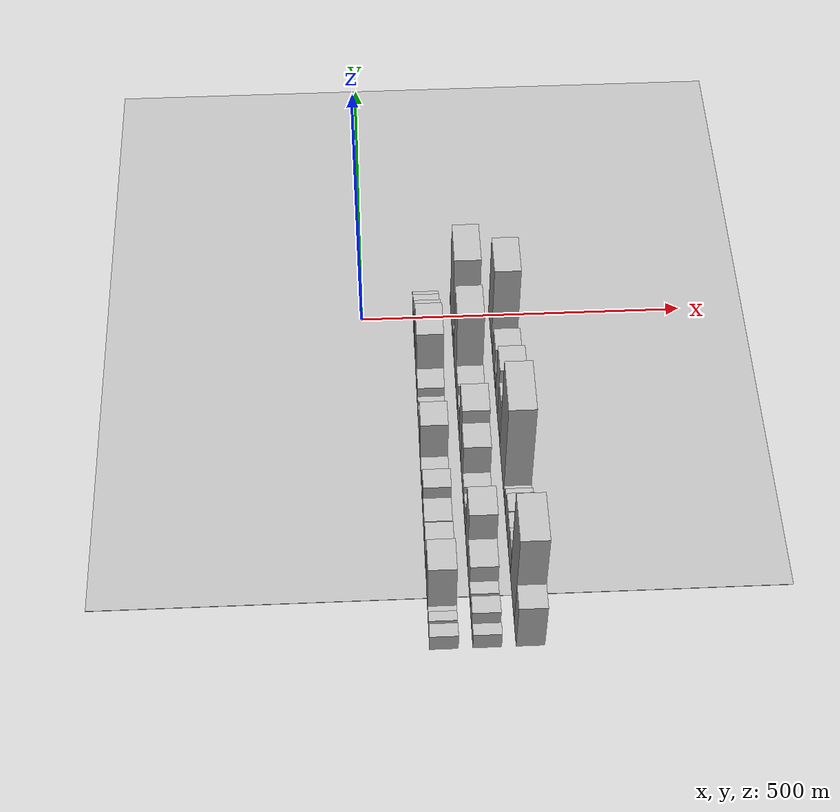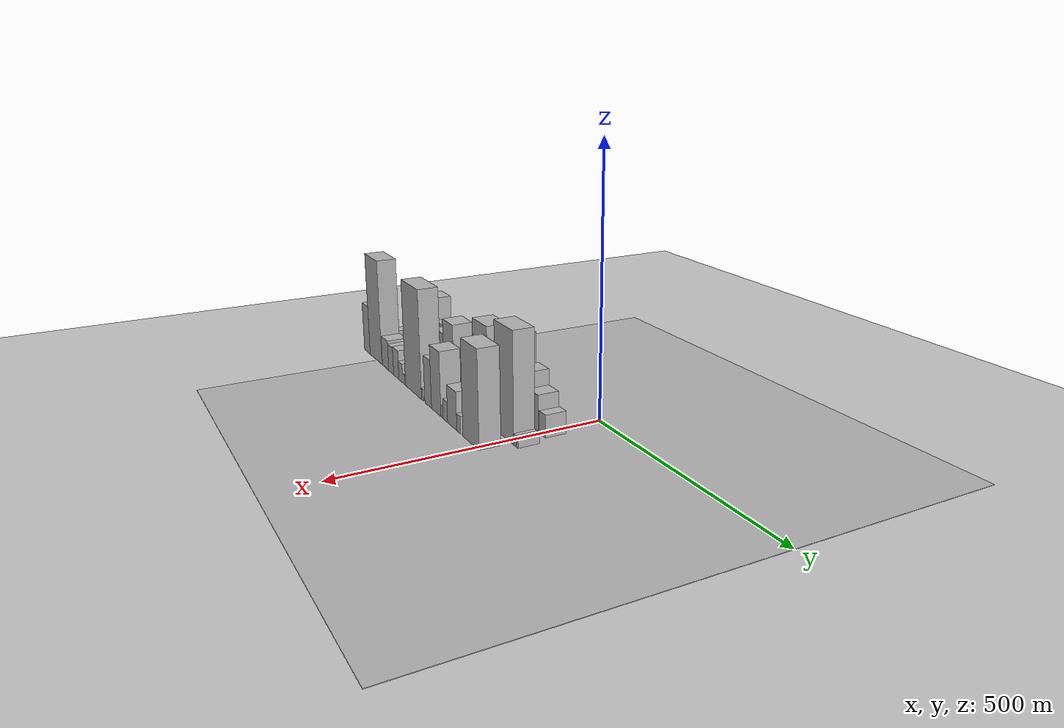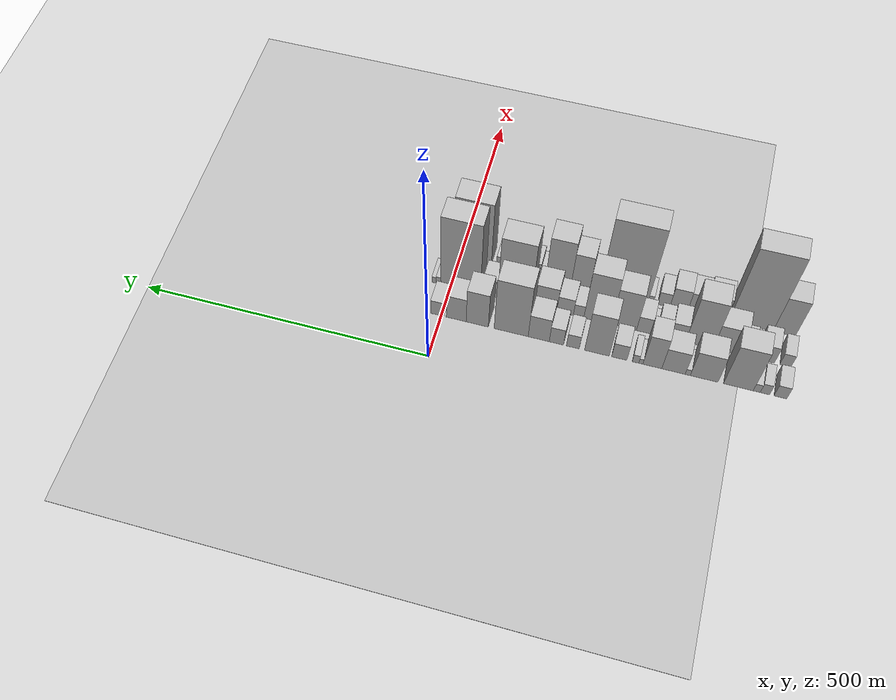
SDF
<sdf version="1.6">
 <world name="default">
  <include><name>ground_plane_1</name><uri>model://HANNAS_ground_plane</uri></include>
  <include>
   <name>ground_plane_2</name>
   <uri>model://HANNAS_ground_plane</uri>
   <pose>100 0 0  0 0 0</pose>
  </include>
  <model name="building_1">
   <static>1</static>
   <pose>100.0000 -569.7294 0 0.000000 0.000000 0.000000</pose>
   <link name="link">
    <pose>0 0 18.00 0 0 0</pose>
    <collision name="collision"><geometry><box><size>40.0000 20.5411 36.0000</size></box></geometry></collision>
    <visual name="visual">
     <cast_shadows>0</cast_shadows>
     <geometry><box><size>40.0000 20.5411 36.0000</size></box></geometry>
     <material>
      <script>
       <uri>model://HANNAS_wall/materials/scripts</uri>
       <uri>model://HANNAS_wall/materials/textures</uri>
       <name>vrc/HANNAS_wall</name>
      </script>
     </material>
    </visual>
   </link>
  </model>
  <model name="building_2">
   <static>1</static>
   <pose>100.0000 -544.8365 0 0.000000 0.000000 0.000000</pose>
   <link name="link">
    <pose>0 0 15.00 0 0 0</pose>
    <collision name="collision"><geometry><box><size>40.0000 15.2448 30.0000</size></box></geometry></collision>
    <visual name="visual">
     <cast_shadows>0</cast_shadows>
     <geometry><box><size>40.0000 15.2448 30.0000</size></box></geometry>
     <material>
      <script>
       <uri>model://HANNAS_wall/materials/scripts</uri>
       <uri>model://HANNAS_wall/materials/textures</uri>
       <name>vrc/HANNAS_wall</name>
      </script>
     </material>
    </visual>
   </link>
  </model>
  <model name="building_3">
   <static>1</static>
   <pose>100.0000 -531.4827 0 0.000000 0.000000 0.000000</pose>
   <link name="link">
    <pose>0 0 12.00 0 0 0</pose>
    <collision name="collision"><geometry><box><size>40.0000 11.4627 24.0000</size></box></geometry></collision>
    <visual name="visual">
     <cast_shadows>0</cast_shadows>
     <geometry><box><size>40.0000 11.4627 24.0000</size></box></geometry>
     <material>
      <script>
       <uri>model://HANNAS_wall/materials/scripts</uri>
       <uri>model://HANNAS_wall/materials/textures</uri>
       <name>vrc/HANNAS_wall</name>
      </script>
     </material>
    </visual>
   </link>
  </model>
  <model name="building_4">
   <static>1</static>
   <pose>100.0000 -501.5214 0 0.000000 0.000000 0.000000</pose>
   <link name="link">
    <pose>0 0 61.50 0 0 0</pose>
    <collision name="collision"><geometry><box><size>40.0000 48.4600 123.0000</size></box></geometry></collision>
    <visual name="visual">
     <cast_shadows>0</cast_shadows>
     <geometry><box><size>40.0000 48.4600 123.0000</size></box></geometry>
     <material>
      <script>
       <uri>model://HANNAS_wall/materials/scripts</uri>
       <uri>model://HANNAS_wall/materials/textures</uri>
       <name>vrc/HANNAS_wall</name>
      </script>
     </material>
    </visual>
   </link>
  </model>
  <model name="building_5">
   <static>1</static>
   <pose>100.0000 -445.5409 0 0.000000 0.000000 0.000000</pose>
   <link name="link">
    <pose>0 0 39.00 0 0 0</pose>
    <collision name="collision"><geometry><box><size>40.0000 45.5010 78.0000</size></box></geometry></collision>
    <visual name="visual">
     <cast_shadows>0</cast_shadows>
     <geometry><box><size>40.0000 45.5010 78.0000</size></box></geometry>
     <material>
      <script>
       <uri>model://HANNAS_wall/materials/scripts</uri>
       <uri>model://HANNAS_wall/materials/textures</uri>
       <name>vrc/HANNAS_wall</name>
      </script>
     </material>
    </visual>
   </link>
  </model>
  <model name="building_6">
   <static>1</static>
   <pose>100.0000 -418.5761 0 0.000000 0.000000 0.000000</pose>
   <link name="link">
    <pose>0 0 9.00 0 0 0</pose>
    <collision name="collision"><geometry><box><size>40.0000 8.4285 18.0000</size></box></geometry></collision>
    <visual name="visual">
     <cast_shadows>0</cast_shadows>
     <geometry><box><size>40.0000 8.4285 18.0000</size></box></geometry>
     <material>
      <script>
       <uri>model://HANNAS_wall/materials/scripts</uri>
       <uri>model://HANNAS_wall/materials/textures</uri>
       <name>vrc/HANNAS_wall</name>
      </script>
     </material>
    </visual>
   </link>
  </model>
  <model name="building_7">
   <static>1</static>
   <pose>100.0000 -394.9789 0 0.000000 0.000000 0.000000</pose>
   <link name="link">
    <pose>0 0 33.00 0 0 0</pose>
    <collision name="collision"><geometry><box><size>40.0000 38.7658 66.0000</size></box></geometry></collision>
    <visual name="visual">
     <cast_shadows>0</cast_shadows>
     <geometry><box><size>40.0000 38.7658 66.0000</size></box></geometry>
     <material>
      <script>
       <uri>model://HANNAS_wall/materials/scripts</uri>
       <uri>model://HANNAS_wall/materials/textures</uri>
       <name>vrc/HANNAS_wall</name>
      </script>
     </material>
    </visual>
   </link>
  </model>
  <model name="building_8">
   <static>1</static>
   <pose>100.0000 -359.9123 0 0.000000 0.000000 0.000000</pose>
   <link name="link">
    <pose>0 0 46.50 0 0 0</pose>
    <collision name="collision"><geometry><box><size>40.0000 31.3676 93.0000</size></box></geometry></collision>
    <visual name="visual">
     <cast_shadows>0</cast_shadows>
     <geometry><box><size>40.0000 31.3676 93.0000</size></box></geometry>
     <material>
      <script>
       <uri>model://HANNAS_wall/materials/scripts</uri>
       <uri>model://HANNAS_wall/materials/textures</uri>
       <name>vrc/HANNAS_wall</name>
      </script>
     </material>
    </visual>
   </link>
  </model>
  <model name="building_9">
   <static>1</static>
   <pose>100.0000 -340.8013 0 0.000000 0.000000 0.000000</pose>
   <link name="link">
    <pose>0 0 7.50 0 0 0</pose>
    <collision name="collision"><geometry><box><size>40.0000 6.8542 15.0000</size></box></geometry></collision>
    <visual name="visual">
     <cast_shadows>0</cast_shadows>
     <geometry><box><size>40.0000 6.8542 15.0000</size></box></geometry>
     <material>
      <script>
       <uri>model://HANNAS_wall/materials/scripts</uri>
       <uri>model://HANNAS_wall/materials/textures</uri>
       <name>vrc/HANNAS_wall</name>
      </script>
     </material>
    </visual>
   </link>
  </model>
  <model name="building_10">
   <static>1</static>
   <pose>100.0000 -331.9226 0 0.000000 0.000000 0.000000</pose>
   <link name="link">
    <pose>0 0 12.00 0 0 0</pose>
    <collision name="collision"><geometry><box><size>40.0000 10.9032 24.0000</size></box></geometry></collision>
    <visual name="visual">
     <cast_shadows>0</cast_shadows>
     <geometry><box><size>40.0000 10.9032 24.0000</size></box></geometry>
     <material>
      <script>
       <uri>model://HANNAS_wall/materials/scripts</uri>
       <uri>model://HANNAS_wall/materials/textures</uri>
       <name>vrc/HANNAS_wall</name>
      </script>
     </material>
    </visual>
   </link>
  </model>
  <model name="building_11">
   <static>1</static>
   <pose>100.0000 -304.6821 0 0.000000 0.000000 0.000000</pose>
   <link name="link">
    <pose>0 0 22.50 0 0 0</pose>
    <collision name="collision"><geometry><box><size>40.0000 25.5778 45.0000</size></box></geometry></collision>
    <visual name="visual">
     <cast_shadows>0</cast_shadows>
     <geometry><box><size>40.0000 25.5778 45.0000</size></box></geometry>
     <material>
      <script>
       <uri>model://HANNAS_wall/materials/scripts</uri>
       <uri>model://HANNAS_wall/materials/textures</uri>
       <name>vrc/HANNAS_wall</name>
      </script>
     </material>
    </visual>
   </link>
  </model>
  <model name="building_12">
   <static>1</static>
   <pose>100.0000 -267.0207 0 0.000000 0.000000 0.000000</pose>
   <link name="link">
    <pose>0 0 60.00 0 0 0</pose>
    <collision name="collision"><geometry><box><size>40.0000 41.7449 120.0000</size></box></geometry></collision>
    <visual name="visual">
     <cast_shadows>0</cast_shadows>
     <geometry><box><size>40.0000 41.7449 120.0000</size></box></geometry>
     <material>
      <script>
       <uri>model://HANNAS_wall/materials/scripts</uri>
       <uri>model://HANNAS_wall/materials/textures</uri>
       <name>vrc/HANNAS_wall</name>
      </script>
     </material>
    </visual>
   </link>
  </model>
  <model name="building_13">
   <static>1</static>
   <pose>100.0000 -226.2781 0 0.000000 0.000000 0.000000</pose>
   <link name="link">
    <pose>0 0 19.50 0 0 0</pose>
    <collision name="collision"><geometry><box><size>40.0000 21.7403 39.0000</size></box></geometry></collision>
    <visual name="visual">
     <cast_shadows>0</cast_shadows>
     <geometry><box><size>40.0000 21.7403 39.0000</size></box></geometry>
     <material>
      <script>
       <uri>model://HANNAS_wall/materials/scripts</uri>
       <uri>model://HANNAS_wall/materials/textures</uri>
       <name>vrc/HANNAS_wall</name>
      </script>
     </material>
    </visual>
   </link>
  </model>
  <model name="building_14">
   <static>1</static>
   <pose>100.0000 -198.2800 0 0.000000 0.000000 0.000000</pose>
   <link name="link">
    <pose>0 0 24.00 0 0 0</pose>
    <collision name="collision"><geometry><box><size>40.0000 24.2561 48.0000</size></box></geometry></collision>
    <visual name="visual">
     <cast_shadows>0</cast_shadows>
     <geometry><box><size>40.0000 24.2561 48.0000</size></box></geometry>
     <material>
      <script>
       <uri>model://HANNAS_wall/materials/scripts</uri>
       <uri>model://HANNAS_wall/materials/textures</uri>
       <name>vrc/HANNAS_wall</name>
      </script>
     </material>
    </visual>
   </link>
  </model>
  <model name="building_15">
   <static>1</static>
   <pose>100.0000 -168.1110 0 0.000000 0.000000 0.000000</pose>
   <link name="link">
    <pose>0 0 34.50 0 0 0</pose>
    <collision name="collision"><geometry><box><size>40.0000 36.0818 69.0000</size></box></geometry></collision>
    <visual name="visual">
     <cast_shadows>0</cast_shadows>
     <geometry><box><size>40.0000 36.0818 69.0000</size></box></geometry>
     <material>
      <script>
       <uri>model://HANNAS_wall/materials/scripts</uri>
       <uri>model://HANNAS_wall/materials/textures</uri>
       <name>vrc/HANNAS_wall</name>
      </script>
     </material>
    </visual>
   </link>
  </model>
  <model name="building_16">
   <static>1</static>
   <pose>100.0000 -120.7735 0 0.000000 0.000000 0.000000</pose>
   <link name="link">
    <pose>0 0 76.50 0 0 0</pose>
    <collision name="collision"><geometry><box><size>40.0000 58.5933 153.0000</size></box></geometry></collision>
    <visual name="visual">
     <cast_shadows>0</cast_shadows>
     <geometry><box><size>40.0000 58.5933 153.0000</size></box></geometry>
     <material>
      <script>
       <uri>model://HANNAS_wall/materials/scripts</uri>
       <uri>model://HANNAS_wall/materials/textures</uri>
       <name>vrc/HANNAS_wall</name>
      </script>
     </material>
    </visual>
   </link>
  </model>
  <model name="building_17">
   <static>1</static>
   <pose>100.0000 -62.2903 0 0.000000 0.000000 0.000000</pose>
   <link name="link">
    <pose>0 0 49.50 0 0 0</pose>
    <collision name="collision"><geometry><box><size>40.0000 38.3731 99.0000</size></box></geometry></collision>
    <visual name="visual">
     <cast_shadows>0</cast_shadows>
     <geometry><box><size>40.0000 38.3731 99.0000</size></box></geometry>
     <material>
      <script>
       <uri>model://HANNAS_wall/materials/scripts</uri>
       <uri>model://HANNAS_wall/materials/textures</uri>
       <name>vrc/HANNAS_wall</name>
      </script>
     </material>
    </visual>
   </link>
  </model>
  <model name="building_18">
   <static>1</static>
   <pose>100.0000 -25.6986 0 0.000000 0.000000 0.000000</pose>
   <link name="link">
    <pose>0 0 34.50 0 0 0</pose>
    <collision name="collision"><geometry><box><size>40.0000 34.8102 69.0000</size></box></geometry></collision>
    <visual name="visual">
     <cast_shadows>0</cast_shadows>
     <geometry><box><size>40.0000 34.8102 69.0000</size></box></geometry>
     <material>
      <script>
       <uri>model://HANNAS_wall/materials/scripts</uri>
       <uri>model://HANNAS_wall/materials/textures</uri>
       <name>vrc/HANNAS_wall</name>
      </script>
     </material>
    </visual>
   </link>
  </model>
  <model name="building_19">
   <static>1</static>
   <pose>100.0000 7.2815 0 0.000000 0.000000 0.000000</pose>
   <link name="link">
    <pose>0 0 21.00 0 0 0</pose>
    <collision name="collision"><geometry><box><size>40.0000 23.1501 42.0000</size></box></geometry></collision>
    <visual name="visual">
     <cast_shadows>0</cast_shadows>
     <geometry><box><size>40.0000 23.1501 42.0000</size></box></geometry>
     <material>
      <script>
       <uri>model://HANNAS_wall/materials/scripts</uri>
       <uri>model://HANNAS_wall/materials/textures</uri>
       <name>vrc/HANNAS_wall</name>
      </script>
     </material>
    </visual>
   </link>
  </model>
  <model name="building_38">
   <static>1</static>
   <pose>160.0000 -570.8208 0 0.000000 0.000000 0.000000</pose>
   <link name="link">
    <pose>0 0 18.00 0 0 0</pose>
    <collision name="collision"><geometry><box><size>40.0000 18.3584 36.0000</size></box></geometry></collision>
    <visual name="visual">
     <cast_shadows>0</cast_shadows>
     <geometry><box><size>40.0000 18.3584 36.0000</size></box></geometry>
     <material>
      <script>
       <uri>model://HANNAS_wall/materials/scripts</uri>
       <uri>model://HANNAS_wall/materials/textures</uri>
       <name>vrc/HANNAS_wall</name>
      </script>
     </material>
    </visual>
   </link>
  </model>
  <model name="building_39">
   <static>1</static>
   <pose>160.0000 -539.3409 0 0.000000 0.000000 0.000000</pose>
   <link name="link">
    <pose>0 0 24.00 0 0 0</pose>
    <collision name="collision"><geometry><box><size>40.0000 26.6013 48.0000</size></box></geometry></collision>
    <visual name="visual">
     <cast_shadows>0</cast_shadows>
     <geometry><box><size>40.0000 26.6013 48.0000</size></box></geometry>
     <material>
      <script>
       <uri>model://HANNAS_wall/materials/scripts</uri>
       <uri>model://HANNAS_wall/materials/textures</uri>
       <name>vrc/HANNAS_wall</name>
      </script>
     </material>
    </visual>
   </link>
  </model>
  <model name="building_40">
   <static>1</static>
   <pose>160.0000 -506.1408 0 0.000000 0.000000 0.000000</pose>
   <link name="link">
    <pose>0 0 18.00 0 0 0</pose>
    <collision name="collision"><geometry><box><size>40.0000 19.7989 36.0000</size></box></geometry></collision>
    <visual name="visual">
     <cast_shadows>0</cast_shadows>
     <geometry><box><size>40.0000 19.7989 36.0000</size></box></geometry>
     <material>
      <script>
       <uri>model://HANNAS_wall/materials/scripts</uri>
       <uri>model://HANNAS_wall/materials/textures</uri>
       <name>vrc/HANNAS_wall</name>
      </script>
     </material>
    </visual>
   </link>
  </model>
  <model name="building_41">
   <static>1</static>
   <pose>160.0000 -473.7672 0 0.000000 0.000000 0.000000</pose>
   <link name="link">
    <pose>0 0 37.50 0 0 0</pose>
    <collision name="collision"><geometry><box><size>40.0000 44.9482 75.0000</size></box></geometry></collision>
    <visual name="visual">
     <cast_shadows>0</cast_shadows>
     <geometry><box><size>40.0000 44.9482 75.0000</size></box></geometry>
     <material>
      <script>
       <uri>model://HANNAS_wall/materials/scripts</uri>
       <uri>model://HANNAS_wall/materials/textures</uri>
       <name>vrc/HANNAS_wall</name>
      </script>
     </material>
    </visual>
   </link>
  </model>
  <model name="building_42">
   <static>1</static>
   <pose>160.0000 -428.0473 0 0.000000 0.000000 0.000000</pose>
   <link name="link">
    <pose>0 0 69.00 0 0 0</pose>
    <collision name="collision"><geometry><box><size>40.0000 46.4916 138.0000</size></box></geometry></collision>
    <visual name="visual">
     <cast_shadows>0</cast_shadows>
     <geometry><box><size>40.0000 46.4916 138.0000</size></box></geometry>
     <material>
      <script>
       <uri>model://HANNAS_wall/materials/scripts</uri>
       <uri>model://HANNAS_wall/materials/textures</uri>
       <name>vrc/HANNAS_wall</name>
      </script>
     </material>
    </visual>
   </link>
  </model>
  <model name="building_43">
   <static>1</static>
   <pose>160.0000 -391.6803 0 0.000000 0.000000 0.000000</pose>
   <link name="link">
    <pose>0 0 25.50 0 0 0</pose>
    <collision name="collision"><geometry><box><size>40.0000 26.2424 51.0000</size></box></geometry></collision>
    <visual name="visual">
     <cast_shadows>0</cast_shadows>
     <geometry><box><size>40.0000 26.2424 51.0000</size></box></geometry>
     <material>
      <script>
       <uri>model://HANNAS_wall/materials/scripts</uri>
       <uri>model://HANNAS_wall/materials/textures</uri>
       <name>vrc/HANNAS_wall</name>
      </script>
     </material>
    </visual>
   </link>
  </model>
  <model name="building_44">
   <static>1</static>
   <pose>160.0000 -366.9874 0 0.000000 0.000000 0.000000</pose>
   <link name="link">
    <pose>0 0 21.00 0 0 0</pose>
    <collision name="collision"><geometry><box><size>40.0000 23.1434 42.0000</size></box></geometry></collision>
    <visual name="visual">
     <cast_shadows>0</cast_shadows>
     <geometry><box><size>40.0000 23.1434 42.0000</size></box></geometry>
     <material>
      <script>
       <uri>model://HANNAS_wall/materials/scripts</uri>
       <uri>model://HANNAS_wall/materials/textures</uri>
       <name>vrc/HANNAS_wall</name>
      </script>
     </material>
    </visual>
   </link>
  </model>
  <model name="building_45">
   <static>1</static>
   <pose>160.0000 -351.0941 0 0.000000 0.000000 0.000000</pose>
   <link name="link">
    <pose>0 0 10.50 0 0 0</pose>
    <collision name="collision"><geometry><box><size>40.0000 8.6432 21.0000</size></box></geometry></collision>
    <visual name="visual">
     <cast_shadows>0</cast_shadows>
     <geometry><box><size>40.0000 8.6432 21.0000</size></box></geometry>
     <material>
      <script>
       <uri>model://HANNAS_wall/materials/scripts</uri>
       <uri>model://HANNAS_wall/materials/textures</uri>
       <name>vrc/HANNAS_wall</name>
      </script>
     </material>
    </visual>
   </link>
  </model>
  <model name="building_46">
   <static>1</static>
   <pose>160.0000 -334.4857 0 0.000000 0.000000 0.000000</pose>
   <link name="link">
    <pose>0 0 22.50 0 0 0</pose>
    <collision name="collision"><geometry><box><size>40.0000 24.5735 45.0000</size></box></geometry></collision>
    <visual name="visual">
     <cast_shadows>0</cast_shadows>
     <geometry><box><size>40.0000 24.5735 45.0000</size></box></geometry>
     <material>
      <script>
       <uri>model://HANNAS_wall/materials/scripts</uri>
       <uri>model://HANNAS_wall/materials/textures</uri>
       <name>vrc/HANNAS_wall</name>
      </script>
     </material>
    </visual>
   </link>
  </model>
  <model name="building_47">
   <static>1</static>
   <pose>160.0000 -301.0077 0 0.000000 0.000000 0.000000</pose>
   <link name="link">
    <pose>0 0 55.50 0 0 0</pose>
    <collision name="collision"><geometry><box><size>40.0000 42.3825 111.0000</size></box></geometry></collision>
    <visual name="visual">
     <cast_shadows>0</cast_shadows>
     <geometry><box><size>40.0000 42.3825 111.0000</size></box></geometry>
     <material>
      <script>
       <uri>model://HANNAS_wall/materials/scripts</uri>
       <uri>model://HANNAS_wall/materials/textures</uri>
       <name>vrc/HANNAS_wall</name>
      </script>
     </material>
    </visual>
   </link>
  </model>
  <model name="building_48">
   <static>1</static>
   <pose>160.0000 -256.0174 0 0.000000 0.000000 0.000000</pose>
   <link name="link">
    <pose>0 0 70.50 0 0 0</pose>
    <collision name="collision"><geometry><box><size>40.0000 47.5980 141.0000</size></box></geometry></collision>
    <visual name="visual">
     <cast_shadows>0</cast_shadows>
     <geometry><box><size>40.0000 47.5980 141.0000</size></box></geometry>
     <material>
      <script>
       <uri>model://HANNAS_wall/materials/scripts</uri>
       <uri>model://HANNAS_wall/materials/textures</uri>
       <name>vrc/HANNAS_wall</name>
      </script>
     </material>
    </visual>
   </link>
  </model>
  <model name="building_49">
   <static>1</static>
   <pose>160.0000 -223.1073 0 0.000000 0.000000 0.000000</pose>
   <link name="link">
    <pose>0 0 18.00 0 0 0</pose>
    <collision name="collision"><geometry><box><size>40.0000 18.2224 36.0000</size></box></geometry></collision>
    <visual name="visual">
     <cast_shadows>0</cast_shadows>
     <geometry><box><size>40.0000 18.2224 36.0000</size></box></geometry>
     <material>
      <script>
       <uri>model://HANNAS_wall/materials/scripts</uri>
       <uri>model://HANNAS_wall/materials/textures</uri>
       <name>vrc/HANNAS_wall</name>
      </script>
     </material>
    </visual>
   </link>
  </model>
  <model name="building_50">
   <static>1</static>
   <pose>160.0000 -199.8318 0 0.000000 0.000000 0.000000</pose>
   <link name="link">
    <pose>0 0 24.00 0 0 0</pose>
    <collision name="collision"><geometry><box><size>40.0000 28.3286 48.0000</size></box></geometry></collision>
    <visual name="visual">
     <cast_shadows>0</cast_shadows>
     <geometry><box><size>40.0000 28.3286 48.0000</size></box></geometry>
     <material>
      <script>
       <uri>model://HANNAS_wall/materials/scripts</uri>
       <uri>model://HANNAS_wall/materials/textures</uri>
       <name>vrc/HANNAS_wall</name>
      </script>
     </material>
    </visual>
   </link>
  </model>
  <model name="building_51">
   <static>1</static>
   <pose>160.0000 -166.2779 0 0.000000 0.000000 0.000000</pose>
   <link name="link">
    <pose>0 0 34.50 0 0 0</pose>
    <collision name="collision"><geometry><box><size>40.0000 38.7792 69.0000</size></box></geometry></collision>
    <visual name="visual">
     <cast_shadows>0</cast_shadows>
     <geometry><box><size>40.0000 38.7792 69.0000</size></box></geometry>
     <material>
      <script>
       <uri>model://HANNAS_wall/materials/scripts</uri>
       <uri>model://HANNAS_wall/materials/textures</uri>
       <name>vrc/HANNAS_wall</name>
      </script>
     </material>
    </visual>
   </link>
  </model>
  <model name="building_52">
   <static>1</static>
   <pose>160.0000 -111.5889 0 0.000000 0.000000 0.000000</pose>
   <link name="link">
    <pose>0 0 90.00 0 0 0</pose>
    <collision name="collision"><geometry><box><size>40.0000 58.5987 180.0000</size></box></geometry></collision>
    <visual name="visual">
     <cast_shadows>0</cast_shadows>
     <geometry><box><size>40.0000 58.5987 180.0000</size></box></geometry>
     <material>
      <script>
       <uri>model://HANNAS_wall/materials/scripts</uri>
       <uri>model://HANNAS_wall/materials/textures</uri>
       <name>vrc/HANNAS_wall</name>
      </script>
     </material>
    </visual>
   </link>
  </model>
  <model name="building_53">
   <static>1</static>
   <pose>160.0000 -68.7185 0 0.000000 0.000000 0.000000</pose>
   <link name="link">
    <pose>0 0 24.00 0 0 0</pose>
    <collision name="collision"><geometry><box><size>40.0000 27.1422 48.0000</size></box></geometry></collision>
    <visual name="visual">
     <cast_shadows>0</cast_shadows>
     <geometry><box><size>40.0000 27.1422 48.0000</size></box></geometry>
     <material>
      <script>
       <uri>model://HANNAS_wall/materials/scripts</uri>
       <uri>model://HANNAS_wall/materials/textures</uri>
       <name>vrc/HANNAS_wall</name>
      </script>
     </material>
    </visual>
   </link>
  </model>
  <model name="building_54">
   <static>1</static>
   <pose>160.0000 -17.2228 0 0.000000 0.000000 0.000000</pose>
   <link name="link">
    <pose>0 0 100.50 0 0 0</pose>
    <collision name="collision"><geometry><box><size>40.0000 69.8490 201.0000</size></box></geometry></collision>
    <visual name="visual">
     <cast_shadows>0</cast_shadows>
     <geometry><box><size>40.0000 69.8490 201.0000</size></box></geometry>
     <material>
      <script>
       <uri>model://HANNAS_wall/materials/scripts</uri>
       <uri>model://HANNAS_wall/materials/textures</uri>
       <name>vrc/HANNAS_wall</name>
      </script>
     </material>
    </visual>
   </link>
  </model>
  <model name="building_55">
   <static>1</static>
   <pose>160.0000 22.1723 0 0.000000 0.000000 0.000000</pose>
   <link name="link">
    <pose>0 0 10.50 0 0 0</pose>
    <collision name="collision"><geometry><box><size>40.0000 8.9414 21.0000</size></box></geometry></collision>
    <visual name="visual">
     <cast_shadows>0</cast_shadows>
     <geometry><box><size>40.0000 8.9414 21.0000</size></box></geometry>
     <material>
      <script>
       <uri>model://HANNAS_wall/materials/scripts</uri>
       <uri>model://HANNAS_wall/materials/textures</uri>
       <name>vrc/HANNAS_wall</name>
      </script>
     </material>
    </visual>
   </link>
  </model>
  <model name="building_56">
   <static>1</static>
   <pose>160.0000 30.2713 0 0.000000 0.000000 0.000000</pose>
   <link name="link">
    <pose>0 0 9.00 0 0 0</pose>
    <collision name="collision"><geometry><box><size>40.0000 7.2566 18.0000</size></box></geometry></collision>
    <visual name="visual">
     <cast_shadows>0</cast_shadows>
     <geometry><box><size>40.0000 7.2566 18.0000</size></box></geometry>
     <material>
      <script>
       <uri>model://HANNAS_wall/materials/scripts</uri>
       <uri>model://HANNAS_wall/materials/textures</uri>
       <name>vrc/HANNAS_wall</name>
      </script>
     </material>
    </visual>
   </link>
  </model>
  <model name="building_74">
   <static>1</static>
   <pose>220.0000 -561.5091 0 0.000000 0.000000 0.000000</pose>
   <link name="link">
    <pose>0 0 52.50 0 0 0</pose>
    <collision name="collision"><geometry><box><size>40.0000 36.9817 105.0000</size></box></geometry></collision>
    <visual name="visual">
     <cast_shadows>0</cast_shadows>
     <geometry><box><size>40.0000 36.9817 105.0000</size></box></geometry>
     <material>
      <script>
       <uri>model://HANNAS_wall/materials/scripts</uri>
       <uri>model://HANNAS_wall/materials/textures</uri>
       <name>vrc/HANNAS_wall</name>
      </script>
     </material>
    </visual>
   </link>
  </model>
  <model name="building_75">
   <static>1</static>
   <pose>220.0000 -505.9745 0 0.000000 0.000000 0.000000</pose>
   <link name="link">
    <pose>0 0 109.50 0 0 0</pose>
    <collision name="collision"><geometry><box><size>40.0000 74.0875 219.0000</size></box></geometry></collision>
    <visual name="visual">
     <cast_shadows>0</cast_shadows>
     <geometry><box><size>40.0000 74.0875 219.0000</size></box></geometry>
     <material>
      <script>
       <uri>model://HANNAS_wall/materials/scripts</uri>
       <uri>model://HANNAS_wall/materials/textures</uri>
       <name>vrc/HANNAS_wall</name>
      </script>
     </material>
    </visual>
   </link>
  </model>
  <model name="building_76">
   <static>1</static>
   <pose>220.0000 -446.1787 0 0.000000 0.000000 0.000000</pose>
   <link name="link">
    <pose>0 0 31.50 0 0 0</pose>
    <collision name="collision"><geometry><box><size>40.0000 37.5043 63.0000</size></box></geometry></collision>
    <visual name="visual">
     <cast_shadows>0</cast_shadows>
     <geometry><box><size>40.0000 37.5043 63.0000</size></box></geometry>
     <material>
      <script>
       <uri>model://HANNAS_wall/materials/scripts</uri>
       <uri>model://HANNAS_wall/materials/textures</uri>
       <name>vrc/HANNAS_wall</name>
      </script>
     </material>
    </visual>
   </link>
  </model>
  <model name="building_77">
   <static>1</static>
   <pose>220.0000 -413.0741 0 0.000000 0.000000 0.000000</pose>
   <link name="link">
    <pose>0 0 28.50 0 0 0</pose>
    <collision name="collision"><geometry><box><size>40.0000 28.7049 57.0000</size></box></geometry></collision>
    <visual name="visual">
     <cast_shadows>0</cast_shadows>
     <geometry><box><size>40.0000 28.7049 57.0000</size></box></geometry>
     <material>
      <script>
       <uri>model://HANNAS_wall/materials/scripts</uri>
       <uri>model://HANNAS_wall/materials/textures</uri>
       <name>vrc/HANNAS_wall</name>
      </script>
     </material>
    </visual>
   </link>
  </model>
  <model name="building_78">
   <static>1</static>
   <pose>220.0000 -383.6184 0 0.000000 0.000000 0.000000</pose>
   <link name="link">
    <pose>0 0 30.00 0 0 0</pose>
    <collision name="collision"><geometry><box><size>40.0000 30.2065 60.0000</size></box></geometry></collision>
    <visual name="visual">
     <cast_shadows>0</cast_shadows>
     <geometry><box><size>40.0000 30.2065 60.0000</size></box></geometry>
     <material>
      <script>
       <uri>model://HANNAS_wall/materials/scripts</uri>
       <uri>model://HANNAS_wall/materials/textures</uri>
       <name>vrc/HANNAS_wall</name>
      </script>
     </material>
    </visual>
   </link>
  </model>
  <model name="building_79">
   <static>1</static>
   <pose>220.0000 -357.9539 0 0.000000 0.000000 0.000000</pose>
   <link name="link">
    <pose>0 0 19.50 0 0 0</pose>
    <collision name="collision"><geometry><box><size>40.0000 21.1226 39.0000</size></box></geometry></collision>
    <visual name="visual">
     <cast_shadows>0</cast_shadows>
     <geometry><box><size>40.0000 21.1226 39.0000</size></box></geometry>
     <material>
      <script>
       <uri>model://HANNAS_wall/materials/scripts</uri>
       <uri>model://HANNAS_wall/materials/textures</uri>
       <name>vrc/HANNAS_wall</name>
      </script>
     </material>
    </visual>
   </link>
  </model>
  <model name="building_80">
   <static>1</static>
   <pose>220.0000 -335.8118 0 0.000000 0.000000 0.000000</pose>
   <link name="link">
    <pose>0 0 10.50 0 0 0</pose>
    <collision name="collision"><geometry><box><size>40.0000 9.1615 21.0000</size></box></geometry></collision>
    <visual name="visual">
     <cast_shadows>0</cast_shadows>
     <geometry><box><size>40.0000 9.1615 21.0000</size></box></geometry>
     <material>
      <script>
       <uri>model://HANNAS_wall/materials/scripts</uri>
       <uri>model://HANNAS_wall/materials/textures</uri>
       <name>vrc/HANNAS_wall</name>
      </script>
     </material>
    </visual>
   </link>
  </model>
  <model name="building_81">
   <static>1</static>
   <pose>220.0000 -289.2649 0 0.000000 0.000000 0.000000</pose>
   <link name="link">
    <pose>0 0 106.50 0 0 0</pose>
    <collision name="collision"><geometry><box><size>40.0000 83.9325 213.0000</size></box></geometry></collision>
    <visual name="visual">
     <cast_shadows>0</cast_shadows>
     <geometry><box><size>40.0000 83.9325 213.0000</size></box></geometry>
     <material>
      <script>
       <uri>model://HANNAS_wall/materials/scripts</uri>
       <uri>model://HANNAS_wall/materials/textures</uri>
       <name>vrc/HANNAS_wall</name>
      </script>
     </material>
    </visual>
   </link>
  </model>
  <model name="building_82">
   <static>1</static>
   <pose>220.0000 -242.3992 0 0.000000 0.000000 0.000000</pose>
   <link name="link">
    <pose>0 0 12.00 0 0 0</pose>
    <collision name="collision"><geometry><box><size>40.0000 9.7990 24.0000</size></box></geometry></collision>
    <visual name="visual">
     <cast_shadows>0</cast_shadows>
     <geometry><box><size>40.0000 9.7990 24.0000</size></box></geometry>
     <material>
      <script>
       <uri>model://HANNAS_wall/materials/scripts</uri>
       <uri>model://HANNAS_wall/materials/textures</uri>
       <name>vrc/HANNAS_wall</name>
      </script>
     </material>
    </visual>
   </link>
  </model>
  <model name="building_83">
   <static>1</static>
   <pose>220.0000 -214.0777 0 0.000000 0.000000 0.000000</pose>
   <link name="link">
    <pose>0 0 46.50 0 0 0</pose>
    <collision name="collision"><geometry><box><size>40.0000 32.8441 93.0000</size></box></geometry></collision>
    <visual name="visual">
     <cast_shadows>0</cast_shadows>
     <geometry><box><size>40.0000 32.8441 93.0000</size></box></geometry>
     <material>
      <script>
       <uri>model://HANNAS_wall/materials/scripts</uri>
       <uri>model://HANNAS_wall/materials/textures</uri>
       <name>vrc/HANNAS_wall</name>
      </script>
     </material>
    </visual>
   </link>
  </model>
  <model name="building_84">
   <static>1</static>
   <pose>220.0000 -175.2880 0 0.000000 0.000000 0.000000</pose>
   <link name="link">
    <pose>0 0 61.50 0 0 0</pose>
    <collision name="collision"><geometry><box><size>40.0000 44.7353 123.0000</size></box></geometry></collision>
    <visual name="visual">
     <cast_shadows>0</cast_shadows>
     <geometry><box><size>40.0000 44.7353 123.0000</size></box></geometry>
     <material>
      <script>
       <uri>model://HANNAS_wall/materials/scripts</uri>
       <uri>model://HANNAS_wall/materials/textures</uri>
       <name>vrc/HANNAS_wall</name>
      </script>
     </material>
    </visual>
   </link>
  </model>
  <model name="building_85">
   <static>1</static>
   <pose>220.0000 -147.9562 0 0.000000 0.000000 0.000000</pose>
   <link name="link">
    <pose>0 0 12.00 0 0 0</pose>
    <collision name="collision"><geometry><box><size>40.0000 9.9283 24.0000</size></box></geometry></collision>
    <visual name="visual">
     <cast_shadows>0</cast_shadows>
     <geometry><box><size>40.0000 9.9283 24.0000</size></box></geometry>
     <material>
      <script>
       <uri>model://HANNAS_wall/materials/scripts</uri>
       <uri>model://HANNAS_wall/materials/textures</uri>
       <name>vrc/HANNAS_wall</name>
      </script>
     </material>
    </visual>
   </link>
  </model>
  <model name="building_86">
   <static>1</static>
   <pose>220.0000 -132.7167 0 0.000000 0.000000 0.000000</pose>
   <link name="link">
    <pose>0 0 19.50 0 0 0</pose>
    <collision name="collision"><geometry><box><size>40.0000 20.5509 39.0000</size></box></geometry></collision>
    <visual name="visual">
     <cast_shadows>0</cast_shadows>
     <geometry><box><size>40.0000 20.5509 39.0000</size></box></geometry>
     <material>
      <script>
       <uri>model://HANNAS_wall/materials/scripts</uri>
       <uri>model://HANNAS_wall/materials/textures</uri>
       <name>vrc/HANNAS_wall</name>
      </script>
     </material>
    </visual>
   </link>
  </model>
  <model name="building_87">
   <static>1</static>
   <pose>220.0000 -102.1624 0 0.000000 0.000000 0.000000</pose>
   <link name="link">
    <pose>0 0 36.00 0 0 0</pose>
    <collision name="collision"><geometry><box><size>40.0000 40.5577 72.0000</size></box></geometry></collision>
    <visual name="visual">
     <cast_shadows>0</cast_shadows>
     <geometry><box><size>40.0000 40.5577 72.0000</size></box></geometry>
     <material>
      <script>
       <uri>model://HANNAS_wall/materials/scripts</uri>
       <uri>model://HANNAS_wall/materials/textures</uri>
       <name>vrc/HANNAS_wall</name>
      </script>
     </material>
    </visual>
   </link>
  </model>
  <model name="building_88">
   <static>1</static>
   <pose>220.0000 -73.4275 0 0.000000 0.000000 0.000000</pose>
   <link name="link">
    <pose>0 0 16.50 0 0 0</pose>
    <collision name="collision"><geometry><box><size>40.0000 16.9122 33.0000</size></box></geometry></collision>
    <visual name="visual">
     <cast_shadows>0</cast_shadows>
     <geometry><box><size>40.0000 16.9122 33.0000</size></box></geometry>
     <material>
      <script>
       <uri>model://HANNAS_wall/materials/scripts</uri>
       <uri>model://HANNAS_wall/materials/textures</uri>
       <name>vrc/HANNAS_wall</name>
      </script>
     </material>
    </visual>
   </link>
  </model>
  <model name="building_89">
   <static>1</static>
   <pose>220.0000 -22.9643 0 0.000000 0.000000 0.000000</pose>
   <link name="link">
    <pose>0 0 88.50 0 0 0</pose>
    <collision name="collision"><geometry><box><size>40.0000 66.0141 177.0000</size></box></geometry></collision>
    <visual name="visual">
     <cast_shadows>0</cast_shadows>
     <geometry><box><size>40.0000 66.0141 177.0000</size></box></geometry>
     <material>
      <script>
       <uri>model://HANNAS_wall/materials/scripts</uri>
       <uri>model://HANNAS_wall/materials/textures</uri>
       <name>vrc/HANNAS_wall</name>
      </script>
     </material>
    </visual>
   </link>
  </model>
 </world>
</sdf>
